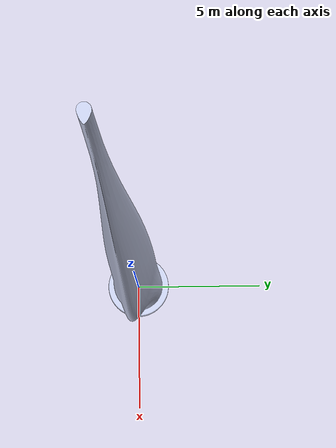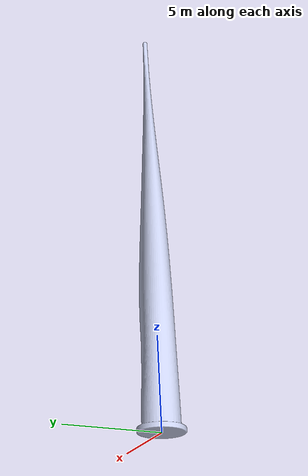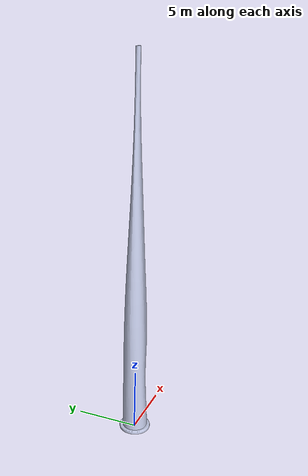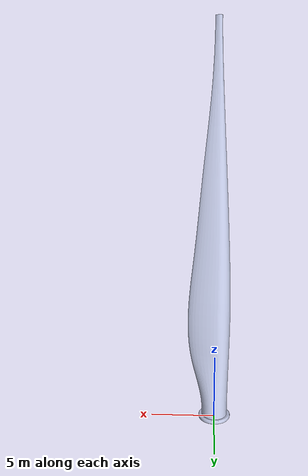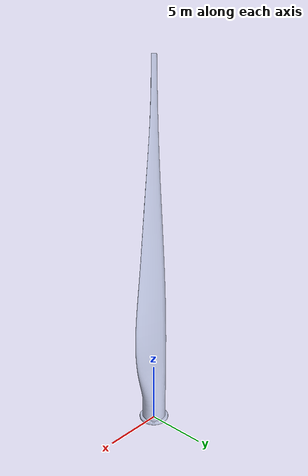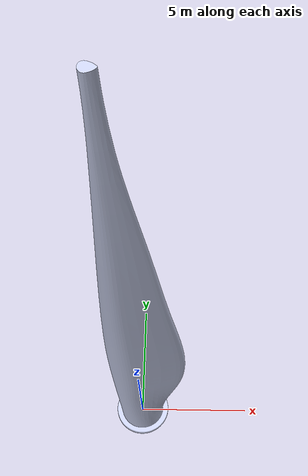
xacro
<?xml version="1.0"?>
<robot name="add_Wind_Turbine"
  xmlns:xacro="http://www.ros.org/wiki/xacro">

  <link name="world" />
  <joint name="world_joint" type="fixed">
    <parent link="world" />
    <child link = "Wind_Turbine" />
    <origin xyz="0.0 0.0 0.0" rpy="-1.57 1.57 0.0" />
  </joint>

  <link name="Wind_Turbine">
    <dynamic value="0"/> <!-- 设置为静态 -->
    <inertial>
      <origin xyz="-0.125000010503603 -2.15006788767957E-05 -0.000265233017206157" rpy="0 0 0" />
      <mass value="1184.80083650931" />
      <inertia ixx="893.855294681977" ixy="1.58845149610879E-05" ixz="2.12600994471626E-06" iyy="452.989065777246" iyz="-0.00263232244555471" izz="453.079003264147" />
    </inertial>
    <visual>
      <origin xyz="0 0 0" rpy="0 0 0" />
      <geometry>
        <mesh filename="package://sipder_robot/meshes/spibot/WindTurbine_Blade.STL" />
      </geometry>
      <material name="">
        <color rgba="0.792156862745098 0.819607843137255 0.933333333333333 1" />
      </material>
    </visual>
    <collision name = "wind_collision">
      <origin xyz="0 0 0" rpy="0 0 0" />
      <geometry>
        <mesh filename="package://sipder_robot/meshes/spibot/WindTurbine_Blade.STL" />
      </geometry>
    </collision>
  </link>

</robot>
